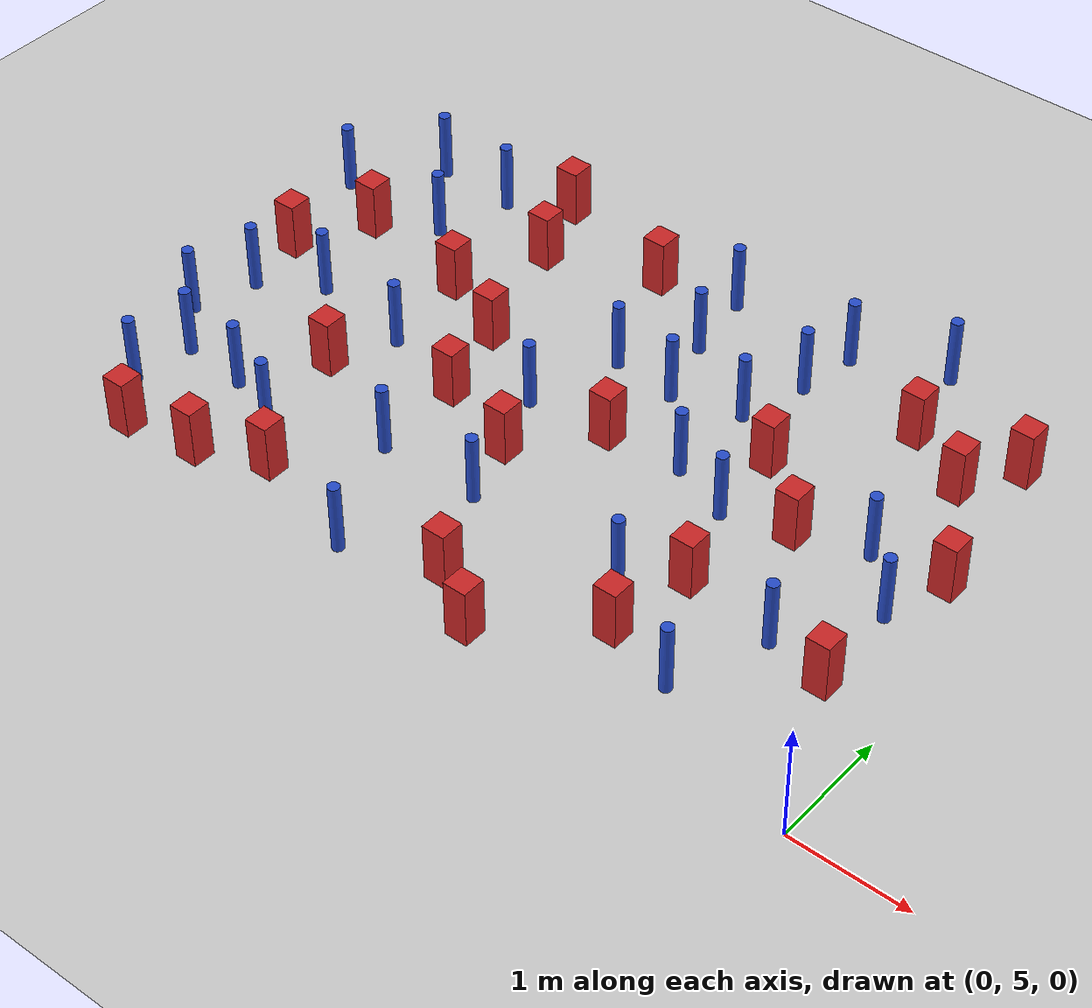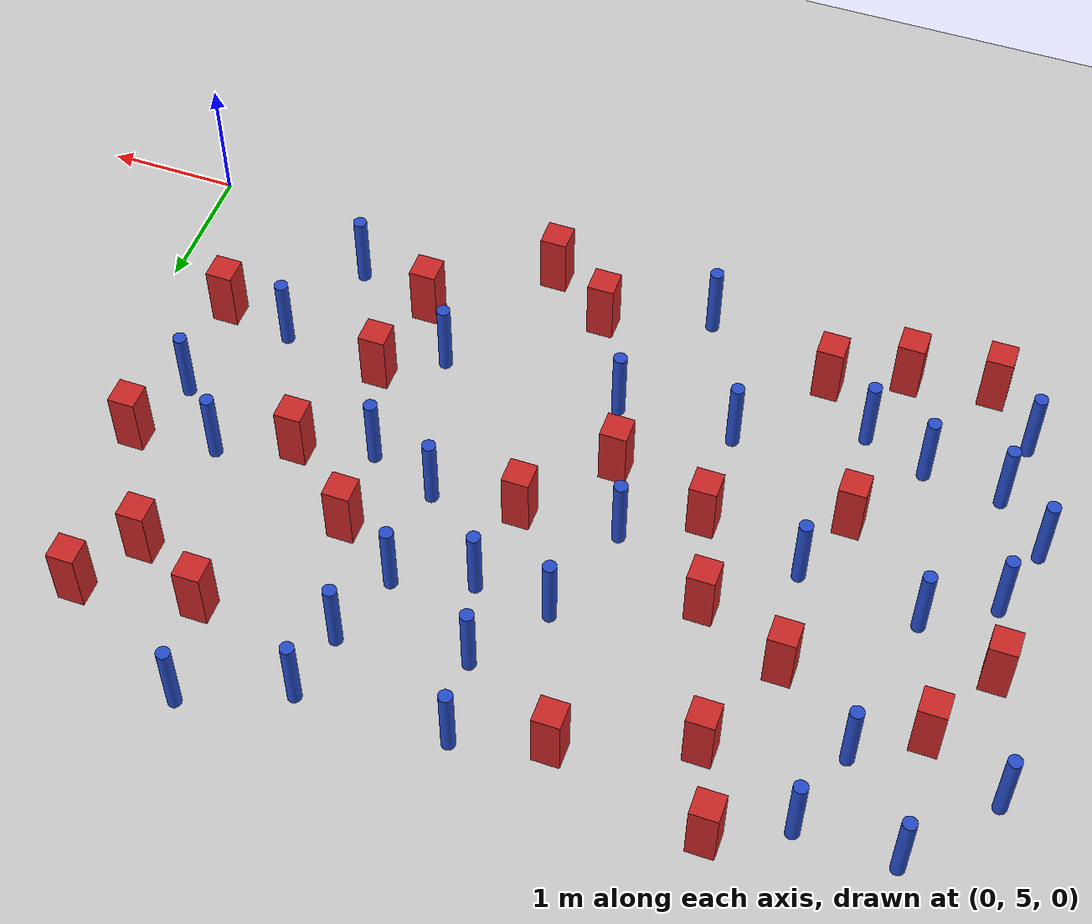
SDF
<sdf version="1.6">
 <world name="default">
  <model name="ground_plane">
   <static>1</static>
   <link name="link">
    <collision name="collision">
     <geometry><plane><normal>0 0 1</normal><size>100 100</size></plane></geometry>
     <surface><friction><ode><mu>100</mu><mu2>50</mu2></ode></friction></surface>
    </collision>
    <visual name="visual">
     <cast_shadows>0</cast_shadows>
     <geometry><plane><normal>0 0 1</normal><size>100 100</size></plane></geometry>
     <material>
      <ambient>1.0 1.0 1.0 1.0</ambient>
      <diffuse>0.8 0.8 0.8 1.0</diffuse>
      <specular>0.01 0.01 0.01 1.000000</specular>
     </material>
    </visual>
   </link>
  </model>
  <model name="square_post_obstacle1">
   <static>true</static>
   <pose>-6.20894556401 5.08491788929 1.91545236811e-07 -7.35059704564e-06 1.12565212e-07 2.39332434364e-05</pose>
   <link name="link">
    <pose>0 0 0.25 0 -0 0</pose>
    <inertial>
     <mass>100</mass>
     <inertia>
      <ixx>0.166667</ixx>
      <ixy>0</ixy>
      <ixz>0</ixz>
      <iyy>0.166667</iyy>
      <iyz>0</iyz>
      <izz>0.166667</izz>
     </inertia>
    </inertial>
    <collision name="collision"><geometry><box><size>.2 .2 .5</size></box></geometry></collision>
    <visual name="visual">
     <geometry><box><size>.2 .2 .5</size></box></geometry>
     <material>
      <script><name>Gazebo/Red</name><uri>file://media/materials/scripts/gazebo.material</uri></script>
     </material>
    </visual>
   </link>
  </model>
  <model name="pole_obstacle3">
   <static>true</static>
   <pose>-6.47764836646 9.04078290669 7.38925637345e-09 -8.471706928e-08 1.24976765081e-08 -1.74513093015e-07</pose>
   <link name="link">
    <pose>0 0 0.3 0 -0 0</pose>
    <inertial>
     <mass>1</mass>
     <inertia><ixx>0.145833</ixx><ixy>0</ixy><ixz>0</ixz><iyy>0.145833</iyy><iyz>0</iyz><izz>0.125</izz></inertia>
    </inertial>
    <collision name="collision">
     <geometry><cylinder><radius>0.05</radius><length>.6</length></cylinder></geometry>
    </collision>
    <visual name="visual">
     <geometry><cylinder><radius>0.05</radius><length>.6</length></cylinder></geometry>
     <material>
      <script><name>Gazebo/Blue</name><uri>file://media/materials/scripts/gazebo.material</uri></script>
     </material>
    </visual>
   </link>
  </model>
  <model name="square_post_obstacle3">
   <static>true</static>
   <pose>-0.432793943756 7.54914708848 1.91545236811e-07 -7.35059704564e-06 1.12565212e-07 2.39332434364e-05</pose>
   <link name="link">
    <pose>0 0 0.25 0 -0 0</pose>
    <inertial>
     <mass>100</mass>
     <inertia>
      <ixx>0.166667</ixx>
      <ixy>0</ixy>
      <ixz>0</ixz>
      <iyy>0.166667</iyy>
      <iyz>0</iyz>
      <izz>0.166667</izz>
     </inertia>
    </inertial>
    <collision name="collision"><geometry><box><size>.2 .2 .5</size></box></geometry></collision>
    <visual name="visual">
     <geometry><box><size>.2 .2 .5</size></box></geometry>
     <material>
      <script><name>Gazebo/Red</name><uri>file://media/materials/scripts/gazebo.material</uri></script>
     </material>
    </visual>
   </link>
  </model>
  <model name="pole_obstacle8">
   <static>true</static>
   <pose>-5.89937046172 5.9574986893 7.38925637345e-09 -8.47170692796e-08 1.24976764786e-08 -1.74513093032e-07</pose>
   <link name="link">
    <pose>0 0 0.3 0 -0 0</pose>
    <inertial>
     <mass>1</mass>
     <inertia><ixx>0.145833</ixx><ixy>0</ixy><ixz>0</ixz><iyy>0.145833</iyy><iyz>0</iyz><izz>0.125</izz></inertia>
    </inertial>
    <collision name="collision">
     <geometry><cylinder><radius>0.05</radius><length>.6</length></cylinder></geometry>
    </collision>
    <visual name="visual">
     <geometry><cylinder><radius>0.05</radius><length>.6</length></cylinder></geometry>
     <material>
      <script><name>Gazebo/Blue</name><uri>file://media/materials/scripts/gazebo.material</uri></script>
     </material>
    </visual>
   </link>
  </model>
  <model name="pole_obstacle11">
   <static>true</static>
   <pose>-4.01556916504 7.21280507882 7.38925637345e-09 -8.47170692795e-08 1.24976764731e-08 -1.74513093035e-07</pose>
   <link name="link">
    <pose>0 0 0.3 0 -0 0</pose>
    <inertial>
     <mass>1</mass>
     <inertia><ixx>0.145833</ixx><ixy>0</ixy><ixz>0</ixz><iyy>0.145833</iyy><iyz>0</iyz><izz>0.125</izz></inertia>
    </inertial>
    <collision name="collision">
     <geometry><cylinder><radius>0.05</radius><length>.6</length></cylinder></geometry>
    </collision>
    <visual name="visual">
     <geometry><cylinder><radius>0.05</radius><length>.6</length></cylinder></geometry>
     <material>
      <script><name>Gazebo/Blue</name><uri>file://media/materials/scripts/gazebo.material</uri></script>
     </material>
    </visual>
   </link>
  </model>
  <model name="pole_obstacle20">
   <static>true</static>
   <pose>-1.66863566471 9.47693834386 7.38925637345e-09 -8.47170692798e-08 1.24976764881e-08 -1.74513093027e-07</pose>
   <link name="link">
    <pose>0 0 0.3 0 -0 0</pose>
    <inertial>
     <mass>1</mass>
     <inertia><ixx>0.145833</ixx><ixy>0</ixy><ixz>0</ixz><iyy>0.145833</iyy><iyz>0</iyz><izz>0.125</izz></inertia>
    </inertial>
    <collision name="collision">
     <geometry><cylinder><radius>0.05</radius><length>.6</length></cylinder></geometry>
    </collision>
    <visual name="visual">
     <geometry><cylinder><radius>0.05</radius><length>.6</length></cylinder></geometry>
     <material>
      <script><name>Gazebo/Blue</name><uri>file://media/materials/scripts/gazebo.material</uri></script>
     </material>
    </visual>
   </link>
  </model>
  <model name="pole_obstacle33">
   <static>true</static>
   <pose>-4.06539118852 5.11988730379 7.38925637345e-09 -8.47170692796e-08 1.24976764786e-08 -1.74513093032e-07</pose>
   <link name="link">
    <pose>0 0 0.3 0 -0 0</pose>
    <inertial>
     <mass>1</mass>
     <inertia><ixx>0.145833</ixx><ixy>0</ixy><ixz>0</ixz><iyy>0.145833</iyy><iyz>0</iyz><izz>0.125</izz></inertia>
    </inertial>
    <collision name="collision">
     <geometry><cylinder><radius>0.05</radius><length>.6</length></cylinder></geometry>
    </collision>
    <visual name="visual">
     <geometry><cylinder><radius>0.05</radius><length>.6</length></cylinder></geometry>
     <material>
      <script><name>Gazebo/Blue</name><uri>file://media/materials/scripts/gazebo.material</uri></script>
     </material>
    </visual>
   </link>
  </model>
  <model name="pole_obstacle43">
   <static>true</static>
   <pose>-5.29233222057 7.10590205062 7.38925637345e-09 -8.47170692796e-08 1.24976764786e-08 -1.74513093032e-07</pose>
   <link name="link">
    <pose>0 0 0.3 0 -0 0</pose>
    <inertial>
     <mass>1</mass>
     <inertia><ixx>0.145833</ixx><ixy>0</ixy><ixz>0</ixz><iyy>0.145833</iyy><iyz>0</iyz><izz>0.125</izz></inertia>
    </inertial>
    <collision name="collision">
     <geometry><cylinder><radius>0.05</radius><length>.6</length></cylinder></geometry>
    </collision>
    <visual name="visual">
     <geometry><cylinder><radius>0.05</radius><length>.6</length></cylinder></geometry>
     <material>
      <script><name>Gazebo/Blue</name><uri>file://media/materials/scripts/gazebo.material</uri></script>
     </material>
    </visual>
   </link>
  </model>
  <model name="pole_obstacle48">
   <static>true</static>
   <pose>-6.82553633014 6.38991426187 7.38925637345e-09 -8.47170692796e-08 1.24976764786e-08 -1.74513093032e-07</pose>
   <link name="link">
    <pose>0 0 0.3 0 -0 0</pose>
    <inertial>
     <mass>1</mass>
     <inertia><ixx>0.145833</ixx><ixy>0</ixy><ixz>0</ixz><iyy>0.145833</iyy><iyz>0</iyz><izz>0.125</izz></inertia>
    </inertial>
    <collision name="collision">
     <geometry><cylinder><radius>0.05</radius><length>.6</length></cylinder></geometry>
    </collision>
    <visual name="visual">
     <geometry><cylinder><radius>0.05</radius><length>.6</length></cylinder></geometry>
     <material>
      <script><name>Gazebo/Blue</name><uri>file://media/materials/scripts/gazebo.material</uri></script>
     </material>
    </visual>
   </link>
  </model>
  <model name="square_post_obstacle38">
   <static>true</static>
   <pose>-1.50850280837 8.7493687069 1.91545236811e-07 -7.35059704564e-06 1.12565212e-07 2.39332434364e-05</pose>
   <link name="link">
    <pose>0 0 0.25 0 -0 0</pose>
    <inertial>
     <mass>100</mass>
     <inertia>
      <ixx>0.166667</ixx>
      <ixy>0</ixy>
      <ixz>0</ixz>
      <iyy>0.166667</iyy>
      <iyz>0</iyz>
      <izz>0.166667</izz>
     </inertia>
    </inertial>
    <collision name="collision"><geometry><box><size>.2 .2 .5</size></box></geometry></collision>
    <visual name="visual">
     <geometry><box><size>.2 .2 .5</size></box></geometry>
     <material>
      <script><name>Gazebo/Red</name><uri>file://media/materials/scripts/gazebo.material</uri></script>
     </material>
    </visual>
   </link>
  </model>
  <model name="pole_obstacle51">
   <static>true</static>
   <pose>-2.48467582547 8.66880732625 7.38925637345e-09 -8.47170692793e-08 1.24976764408e-08 -1.74513093041e-07</pose>
   <link name="link">
    <pose>0 0 0.3 0 -0 0</pose>
    <inertial>
     <mass>1</mass>
     <inertia><ixx>0.145833</ixx><ixy>0</ixy><ixz>0</ixz><iyy>0.145833</iyy><iyz>0</iyz><izz>0.125</izz></inertia>
    </inertial>
    <collision name="collision">
     <geometry><cylinder><radius>0.05</radius><length>.6</length></cylinder></geometry>
    </collision>
    <visual name="visual">
     <geometry><cylinder><radius>0.05</radius><length>.6</length></cylinder></geometry>
     <material>
      <script><name>Gazebo/Blue</name><uri>file://media/materials/scripts/gazebo.material</uri></script>
     </material>
    </visual>
   </link>
  </model>
  <model name="square_post_obstacle40">
   <static>true</static>
   <pose>-6.7552293985 7.4811414741 1.91545236811e-07 -7.35059704564e-06 1.12565212e-07 2.39332434364e-05</pose>
   <link name="link">
    <pose>0 0 0.25 0 -0 0</pose>
    <inertial>
     <mass>100</mass>
     <inertia>
      <ixx>0.166667</ixx>
      <ixy>0</ixy>
      <ixz>0</ixz>
      <iyy>0.166667</iyy>
      <iyz>0</iyz>
      <izz>0.166667</izz>
     </inertia>
    </inertial>
    <collision name="collision"><geometry><box><size>.2 .2 .5</size></box></geometry></collision>
    <visual name="visual">
     <geometry><box><size>.2 .2 .5</size></box></geometry>
     <material>
      <script><name>Gazebo/Red</name><uri>file://media/materials/scripts/gazebo.material</uri></script>
     </material>
    </visual>
   </link>
  </model>
  <model name="square_post_obstacle47">
   <static>true</static>
   <pose>-4.14041567313 8.99041949778 1.91545236811e-07 -7.35059704564e-06 1.12565212e-07 2.39332434364e-05</pose>
   <link name="link">
    <pose>0 0 0.25 0 -0 0</pose>
    <inertial>
     <mass>100</mass>
     <inertia>
      <ixx>0.166667</ixx>
      <ixy>0</ixy>
      <ixz>0</ixz>
      <iyy>0.166667</iyy>
      <iyz>0</iyz>
      <izz>0.166667</izz>
     </inertia>
    </inertial>
    <collision name="collision"><geometry><box><size>.2 .2 .5</size></box></geometry></collision>
    <visual name="visual">
     <geometry><box><size>.2 .2 .5</size></box></geometry>
     <material>
      <script><name>Gazebo/Red</name><uri>file://media/materials/scripts/gazebo.material</uri></script>
     </material>
    </visual>
   </link>
  </model>
  <model name="square_post_obstacle54">
   <static>true</static>
   <pose>-1.59396003654 7.2768290439 1.91545236811e-07 -7.35059704564e-06 1.12565212e-07 2.39332434364e-05</pose>
   <link name="link">
    <pose>0 0 0.25 0 -0 0</pose>
    <inertial>
     <mass>100</mass>
     <inertia>
      <ixx>0.166667</ixx>
      <ixy>0</ixy>
      <ixz>0</ixz>
      <iyy>0.166667</iyy>
      <iyz>0</iyz>
      <izz>0.166667</izz>
     </inertia>
    </inertial>
    <collision name="collision"><geometry><box><size>.2 .2 .5</size></box></geometry></collision>
    <visual name="visual">
     <geometry><box><size>.2 .2 .5</size></box></geometry>
     <material>
      <script><name>Gazebo/Red</name><uri>file://media/materials/scripts/gazebo.material</uri></script>
     </material>
    </visual>
   </link>
  </model>
  <model name="square_post_obstacle58">
   <static>true</static>
   <pose>-0.650520654761 8.89633776445 1.91545236811e-07 -7.35059704564e-06 1.12565212e-07 2.39332434364e-05</pose>
   <link name="link">
    <pose>0 0 0.25 0 -0 0</pose>
    <inertial>
     <mass>100</mass>
     <inertia>
      <ixx>0.166667</ixx>
      <ixy>0</ixy>
      <ixz>0</ixz>
      <iyy>0.166667</iyy>
      <iyz>0</iyz>
      <izz>0.166667</izz>
     </inertia>
    </inertial>
    <collision name="collision"><geometry><box><size>.2 .2 .5</size></box></geometry></collision>
    <visual name="visual">
     <geometry><box><size>.2 .2 .5</size></box></geometry>
     <material>
      <script><name>Gazebo/Red</name><uri>file://media/materials/scripts/gazebo.material</uri></script>
     </material>
    </visual>
   </link>
  </model>
  <model name="square_post_obstacle62">
   <static>true</static>
   <pose>-5.06241855081 8.66214769846 1.91545236811e-07 -7.35059704564e-06 1.12565212e-07 2.39332434364e-05</pose>
   <link name="link">
    <pose>0 0 0.25 0 -0 0</pose>
    <inertial>
     <mass>100</mass>
     <inertia>
      <ixx>0.166667</ixx>
      <ixy>0</ixy>
      <ixz>0</ixz>
      <iyy>0.166667</iyy>
      <iyz>0</iyz>
      <izz>0.166667</izz>
     </inertia>
    </inertial>
    <collision name="collision"><geometry><box><size>.2 .2 .5</size></box></geometry></collision>
    <visual name="visual">
     <geometry><box><size>.2 .2 .5</size></box></geometry>
     <material>
      <script><name>Gazebo/Red</name><uri>file://media/materials/scripts/gazebo.material</uri></script>
     </material>
    </visual>
   </link>
  </model>
  <model name="pole_obstacle73">
   <static>true</static>
   <pose>-4.52147539146 6.12141185137 7.38925637345e-09 -8.47170692796e-08 1.24976764786e-08 -1.74513093032e-07</pose>
   <link name="link">
    <pose>0 0 0.3 0 -0 0</pose>
    <inertial>
     <mass>1</mass>
     <inertia><ixx>0.145833</ixx><ixy>0</ixy><ixz>0</ixz><iyy>0.145833</iyy><iyz>0</iyz><izz>0.125</izz></inertia>
    </inertial>
    <collision name="collision">
     <geometry><cylinder><radius>0.05</radius><length>.6</length></cylinder></geometry>
    </collision>
    <visual name="visual">
     <geometry><cylinder><radius>0.05</radius><length>.6</length></cylinder></geometry>
     <material>
      <script><name>Gazebo/Blue</name><uri>file://media/materials/scripts/gazebo.material</uri></script>
     </material>
    </visual>
   </link>
  </model>
  <model name="square_post_obstacle66">
   <static>true</static>
   <pose>-5.38205923849 7.89868391297 1.91545236811e-07 -7.35059704564e-06 1.12565212e-07 2.39332434364e-05</pose>
   <link name="link">
    <pose>0 0 0.25 0 -0 0</pose>
    <inertial>
     <mass>100</mass>
     <inertia>
      <ixx>0.166667</ixx>
      <ixy>0</ixy>
      <ixz>0</ixz>
      <iyy>0.166667</iyy>
      <iyz>0</iyz>
      <izz>0.166667</izz>
     </inertia>
    </inertial>
    <collision name="collision"><geometry><box><size>.2 .2 .5</size></box></geometry></collision>
    <visual name="visual">
     <geometry><box><size>.2 .2 .5</size></box></geometry>
     <material>
      <script><name>Gazebo/Red</name><uri>file://media/materials/scripts/gazebo.material</uri></script>
     </material>
    </visual>
   </link>
  </model>
  <model name="square_post_obstacle72">
   <static>true</static>
   <pose>-2.18340389201 7.79481858662 1.91545236811e-07 -7.35059704564e-06 1.12565212e-07 2.39332434364e-05</pose>
   <link name="link">
    <pose>0 0 0.25 0 -0 0</pose>
    <inertial>
     <mass>100</mass>
     <inertia>
      <ixx>0.166667</ixx>
      <ixy>0</ixy>
      <ixz>0</ixz>
      <iyy>0.166667</iyy>
      <iyz>0</iyz>
      <izz>0.166667</izz>
     </inertia>
    </inertial>
    <collision name="collision"><geometry><box><size>.2 .2 .5</size></box></geometry></collision>
    <visual name="visual">
     <geometry><box><size>.2 .2 .5</size></box></geometry>
     <material>
      <script><name>Gazebo/Red</name><uri>file://media/materials/scripts/gazebo.material</uri></script>
     </material>
    </visual>
   </link>
  </model>
  <model name="pole_obstacle86">
   <static>true</static>
   <pose>-0.611810210772 7.02652283224 7.38925637345e-09 -8.471706928e-08 1.24976765086e-08 -1.74513093015e-07</pose>
   <link name="link">
    <pose>0 0 0.3 0 -0 0</pose>
    <inertial>
     <mass>1</mass>
     <inertia><ixx>0.145833</ixx><ixy>0</ixy><ixz>0</ixz><iyy>0.145833</iyy><iyz>0</iyz><izz>0.125</izz></inertia>
    </inertial>
    <collision name="collision">
     <geometry><cylinder><radius>0.05</radius><length>.6</length></cylinder></geometry>
    </collision>
    <visual name="visual">
     <geometry><cylinder><radius>0.05</radius><length>.6</length></cylinder></geometry>
     <material>
      <script><name>Gazebo/Blue</name><uri>file://media/materials/scripts/gazebo.material</uri></script>
     </material>
    </visual>
   </link>
  </model>
  <model name="square_post_obstacle86">
   <static>true</static>
   <pose>-3.30049789746 7.26936227035 1.91545236811e-07 -7.35059704564e-06 1.12565212e-07 2.39332434364e-05</pose>
   <link name="link">
    <pose>0 0 0.25 0 -0 0</pose>
    <inertial>
     <mass>100</mass>
     <inertia>
      <ixx>0.166667</ixx>
      <ixy>0</ixy>
      <ixz>0</ixz>
      <iyy>0.166667</iyy>
      <iyz>0</iyz>
      <izz>0.166667</izz>
     </inertia>
    </inertial>
    <collision name="collision"><geometry><box><size>.2 .2 .5</size></box></geometry></collision>
    <visual name="visual">
     <geometry><box><size>.2 .2 .5</size></box></geometry>
     <material>
      <script><name>Gazebo/Red</name><uri>file://media/materials/scripts/gazebo.material</uri></script>
     </material>
    </visual>
   </link>
  </model>
  <model name="pole_obstacle95">
   <static>true</static>
   <pose>-3.78122057764 7.99986493769 7.38925637345e-09 -8.471706928e-08 1.24976765193e-08 -1.74513093011e-07</pose>
   <link name="link">
    <pose>0 0 0.3 0 -0 0</pose>
    <inertial>
     <mass>1</mass>
     <inertia><ixx>0.145833</ixx><ixy>0</ixy><ixz>0</ixz><iyy>0.145833</iyy><iyz>0</iyz><izz>0.125</izz></inertia>
    </inertial>
    <collision name="collision">
     <geometry><cylinder><radius>0.05</radius><length>.6</length></cylinder></geometry>
    </collision>
    <visual name="visual">
     <geometry><cylinder><radius>0.05</radius><length>.6</length></cylinder></geometry>
     <material>
      <script><name>Gazebo/Blue</name><uri>file://media/materials/scripts/gazebo.material</uri></script>
     </material>
    </visual>
   </link>
  </model>
  <model name="square_post_obstacle91">
   <static>true</static>
   <pose>-5.58121292517 5.17262892646 1.91545236811e-07 -7.35059704564e-06 1.12565212e-07 2.39332434364e-05</pose>
   <link name="link">
    <pose>0 0 0.25 0 -0 0</pose>
    <inertial>
     <mass>100</mass>
     <inertia>
      <ixx>0.166667</ixx>
      <ixy>0</ixy>
      <ixz>0</ixz>
      <iyy>0.166667</iyy>
      <iyz>0</iyz>
      <izz>0.166667</izz>
     </inertia>
    </inertial>
    <collision name="collision"><geometry><box><size>.2 .2 .5</size></box></geometry></collision>
    <visual name="visual">
     <geometry><box><size>.2 .2 .5</size></box></geometry>
     <material>
      <script><name>Gazebo/Red</name><uri>file://media/materials/scripts/gazebo.material</uri></script>
     </material>
    </visual>
   </link>
  </model>
  <model name="pole_obstacle100">
   <static>true</static>
   <pose>-2.65486168831 7.32882470483 7.38925637345e-09 -8.47170692798e-08 1.24976765033e-08 -1.74513093019e-07</pose>
   <link name="link">
    <pose>0 0 0.3 0 -0 0</pose>
    <inertial>
     <mass>1</mass>
     <inertia><ixx>0.145833</ixx><ixy>0</ixy><ixz>0</ixz><iyy>0.145833</iyy><iyz>0</iyz><izz>0.125</izz></inertia>
    </inertial>
    <collision name="collision">
     <geometry><cylinder><radius>0.05</radius><length>.6</length></cylinder></geometry>
    </collision>
    <visual name="visual">
     <geometry><cylinder><radius>0.05</radius><length>.6</length></cylinder></geometry>
     <material>
      <script><name>Gazebo/Blue</name><uri>file://media/materials/scripts/gazebo.material</uri></script>
     </material>
    </visual>
   </link>
  </model>
  <model name="pole_obstacle107">
   <static>true</static>
   <pose>-2.29865022578 6.14065715365 7.38925637345e-09 -8.47170692798e-08 1.24976765033e-08 -1.74513093019e-07</pose>
   <link name="link">
    <pose>0 0 0.3 0 -0 0</pose>
    <inertial>
     <mass>1</mass>
     <inertia><ixx>0.145833</ixx><ixy>0</ixy><ixz>0</ixz><iyy>0.145833</iyy><iyz>0</iyz><izz>0.125</izz></inertia>
    </inertial>
    <collision name="collision">
     <geometry><cylinder><radius>0.05</radius><length>.6</length></cylinder></geometry>
    </collision>
    <visual name="visual">
     <geometry><cylinder><radius>0.05</radius><length>.6</length></cylinder></geometry>
     <material>
      <script><name>Gazebo/Blue</name><uri>file://media/materials/scripts/gazebo.material</uri></script>
     </material>
    </visual>
   </link>
  </model>
  <model name="square_post_obstacle106">
   <static>true</static>
   <pose>-2.79856461067 5.06059939009 1.91545236811e-07 -7.35059704564e-06 1.12565212e-07 2.39332434364e-05</pose>
   <link name="link">
    <pose>0 0 0.25 0 -0 0</pose>
    <inertial>
     <mass>100</mass>
     <inertia>
      <ixx>0.166667</ixx>
      <ixy>0</ixy>
      <ixz>0</ixz>
      <iyy>0.166667</iyy>
      <iyz>0</iyz>
      <izz>0.166667</izz>
     </inertia>
    </inertial>
    <collision name="collision"><geometry><box><size>.2 .2 .5</size></box></geometry></collision>
    <visual name="visual">
     <geometry><box><size>.2 .2 .5</size></box></geometry>
     <material>
      <script><name>Gazebo/Red</name><uri>file://media/materials/scripts/gazebo.material</uri></script>
     </material>
    </visual>
   </link>
  </model>
  <model name="pole_obstacle112">
   <static>true</static>
   <pose>-6.47332131638 6.01118612711 7.38925637345e-09 -8.47170692796e-08 1.24976764786e-08 -1.74513093032e-07</pose>
   <link name="link">
    <pose>0 0 0.3 0 -0 0</pose>
    <inertial>
     <mass>1</mass>
     <inertia><ixx>0.145833</ixx><ixy>0</ixy><ixz>0</ixz><iyy>0.145833</iyy><iyz>0</iyz><izz>0.125</izz></inertia>
    </inertial>
    <collision name="collision">
     <geometry><cylinder><radius>0.05</radius><length>.6</length></cylinder></geometry>
    </collision>
    <visual name="visual">
     <geometry><cylinder><radius>0.05</radius><length>.6</length></cylinder></geometry>
     <material>
      <script><name>Gazebo/Blue</name><uri>file://media/materials/scripts/gazebo.material</uri></script>
     </material>
    </visual>
   </link>
  </model>
  <model name="pole_obstacle115">
   <static>true</static>
   <pose>-5.78686398361 9.02503411449 7.38925637345e-09 -8.471706928e-08 1.24976765081e-08 -1.74513093015e-07</pose>
   <link name="link">
    <pose>0 0 0.3 0 -0 0</pose>
    <inertial>
     <mass>1</mass>
     <inertia><ixx>0.145833</ixx><ixy>0</ixy><ixz>0</ixz><iyy>0.145833</iyy><iyz>0</iyz><izz>0.125</izz></inertia>
    </inertial>
    <collision name="collision">
     <geometry><cylinder><radius>0.05</radius><length>.6</length></cylinder></geometry>
    </collision>
    <visual name="visual">
     <geometry><cylinder><radius>0.05</radius><length>.6</length></cylinder></geometry>
     <material>
      <script><name>Gazebo/Blue</name><uri>file://media/materials/scripts/gazebo.material</uri></script>
     </material>
    </visual>
   </link>
  </model>
  <model name="square_post_obstacle112">
   <static>true</static>
   <pose>-1.99038155106 5.70092643401 1.91545236811e-07 -7.35059704564e-06 1.12565212e-07 2.39332434364e-05</pose>
   <link name="link">
    <pose>0 0 0.25 0 -0 0</pose>
    <inertial>
     <mass>100</mass>
     <inertia>
      <ixx>0.166667</ixx>
      <ixy>0</ixy>
      <ixz>0</ixz>
      <iyy>0.166667</iyy>
      <iyz>0</iyz>
      <izz>0.166667</izz>
     </inertia>
    </inertial>
    <collision name="collision"><geometry><box><size>.2 .2 .5</size></box></geometry></collision>
    <visual name="visual">
     <geometry><box><size>.2 .2 .5</size></box></geometry>
     <material>
      <script><name>Gazebo/Red</name><uri>file://media/materials/scripts/gazebo.material</uri></script>
     </material>
    </visual>
   </link>
  </model>
  <model name="square_post_obstacle113">
   <static>true</static>
   <pose>-0.573171763078 6.22128911317 1.91545236811e-07 -7.35059704564e-06 1.12565212e-07 2.39332434364e-05</pose>
   <link name="link">
    <pose>0 0 0.25 0 -0 0</pose>
    <inertial>
     <mass>100</mass>
     <inertia>
      <ixx>0.166667</ixx>
      <ixy>0</ixy>
      <ixz>0</ixz>
      <iyy>0.166667</iyy>
      <iyz>0</iyz>
      <izz>0.166667</izz>
     </inertia>
    </inertial>
    <collision name="collision"><geometry><box><size>.2 .2 .5</size></box></geometry></collision>
    <visual name="visual">
     <geometry><box><size>.2 .2 .5</size></box></geometry>
     <material>
      <script><name>Gazebo/Red</name><uri>file://media/materials/scripts/gazebo.material</uri></script>
     </material>
    </visual>
   </link>
  </model>
  <model name="pole_obstacle122">
   <static>true</static>
   <pose>-3.22174271805 7.94805608816 7.38925637345e-09 -8.47170692798e-08 1.24976765033e-08 -1.74513093019e-07</pose>
   <link name="link">
    <pose>0 0 0.3 0 -0 0</pose>
    <inertial>
     <mass>1</mass>
     <inertia><ixx>0.145833</ixx><ixy>0</ixy><ixz>0</ixz><iyy>0.145833</iyy><iyz>0</iyz><izz>0.125</izz></inertia>
    </inertial>
    <collision name="collision">
     <geometry><cylinder><radius>0.05</radius><length>.6</length></cylinder></geometry>
    </collision>
    <visual name="visual">
     <geometry><cylinder><radius>0.05</radius><length>.6</length></cylinder></geometry>
     <material>
      <script><name>Gazebo/Blue</name><uri>file://media/materials/scripts/gazebo.material</uri></script>
     </material>
    </visual>
   </link>
  </model>
  <model name="square_post_obstacle123">
   <static>true</static>
   <pose>-5.03913984219 5.40950445573 1.91545236811e-07 -7.35059704564e-06 1.12565212e-07 2.39332434364e-05</pose>
   <link name="link">
    <pose>0 0 0.25 0 -0 0</pose>
    <inertial>
     <mass>100</mass>
     <inertia>
      <ixx>0.166667</ixx>
      <ixy>0</ixy>
      <ixz>0</ixz>
      <iyy>0.166667</iyy>
      <iyz>0</iyz>
      <izz>0.166667</izz>
     </inertia>
    </inertial>
    <collision name="collision"><geometry><box><size>.2 .2 .5</size></box></geometry></collision>
    <visual name="visual">
     <geometry><box><size>.2 .2 .5</size></box></geometry>
     <material>
      <script><name>Gazebo/Red</name><uri>file://media/materials/scripts/gazebo.material</uri></script>
     </material>
    </visual>
   </link>
  </model>
  <model name="square_post_obstacle129">
   <static>true</static>
   <pose>-1.87731808479 6.41770010816 1.91545236811e-07 -7.35059704564e-06 1.12565212e-07 2.39332434364e-05</pose>
   <link name="link">
    <pose>0 0 0.25 0 -0 0</pose>
    <inertial>
     <mass>100</mass>
     <inertia>
      <ixx>0.166667</ixx>
      <ixy>0</ixy>
      <ixz>0</ixz>
      <iyy>0.166667</iyy>
      <iyz>0</iyz>
      <izz>0.166667</izz>
     </inertia>
    </inertial>
    <collision name="collision"><geometry><box><size>.2 .2 .5</size></box></geometry></collision>
    <visual name="visual">
     <geometry><box><size>.2 .2 .5</size></box></geometry>
     <material>
      <script><name>Gazebo/Red</name><uri>file://media/materials/scripts/gazebo.material</uri></script>
     </material>
    </visual>
   </link>
  </model>
  <model name="pole_obstacle138">
   <static>true</static>
   <pose>-2.40298603883 9.17294578273 7.38925637345e-09 -8.47170692793e-08 1.24976764408e-08 -1.74513093041e-07</pose>
   <link name="link">
    <pose>0 0 0.3 0 -0 0</pose>
    <inertial>
     <mass>1</mass>
     <inertia><ixx>0.145833</ixx><ixy>0</ixy><ixz>0</ixz><iyy>0.145833</iyy><iyz>0</iyz><izz>0.125</izz></inertia>
    </inertial>
    <collision name="collision">
     <geometry><cylinder><radius>0.05</radius><length>.6</length></cylinder></geometry>
    </collision>
    <visual name="visual">
     <geometry><cylinder><radius>0.05</radius><length>.6</length></cylinder></geometry>
     <material>
      <script><name>Gazebo/Blue</name><uri>file://media/materials/scripts/gazebo.material</uri></script>
     </material>
    </visual>
   </link>
  </model>
  <model name="square_post_obstacle139">
   <static>true</static>
   <pose>-0.934914515662 8.42577003512 1.91545236811e-07 -7.35059704564e-06 1.12565212e-07 2.39332434364e-05</pose>
   <link name="link">
    <pose>0 0 0.25 0 -0 0</pose>
    <inertial>
     <mass>100</mass>
     <inertia>
      <ixx>0.166667</ixx>
      <ixy>0</ixy>
      <ixz>0</ixz>
      <iyy>0.166667</iyy>
      <iyz>0</iyz>
      <izz>0.166667</izz>
     </inertia>
    </inertial>
    <collision name="collision"><geometry><box><size>.2 .2 .5</size></box></geometry></collision>
    <visual name="visual">
     <geometry><box><size>.2 .2 .5</size></box></geometry>
     <material>
      <script><name>Gazebo/Red</name><uri>file://media/materials/scripts/gazebo.material</uri></script>
     </material>
    </visual>
   </link>
  </model>
  <model name="square_post_obstacle141">
   <static>true</static>
   <pose>-3.80790569587 6.65970384939 1.91545236811e-07 -7.35059704564e-06 1.12565212e-07 2.39332434364e-05</pose>
   <link name="link">
    <pose>0 0 0.25 0 -0 0</pose>
    <inertial>
     <mass>100</mass>
     <inertia>
      <ixx>0.166667</ixx>
      <ixy>0</ixy>
      <ixz>0</ixz>
      <iyy>0.166667</iyy>
      <iyz>0</iyz>
      <izz>0.166667</izz>
     </inertia>
    </inertial>
    <collision name="collision"><geometry><box><size>.2 .2 .5</size></box></geometry></collision>
    <visual name="visual">
     <geometry><box><size>.2 .2 .5</size></box></geometry>
     <material>
      <script><name>Gazebo/Red</name><uri>file://media/materials/scripts/gazebo.material</uri></script>
     </material>
    </visual>
   </link>
  </model>
  <model name="pole_obstacle150">
   <static>true</static>
   <pose>-6.99057628273 8.40293337798 7.38925637345e-09 -8.471706928e-08 1.24976765081e-08 -1.74513093015e-07</pose>
   <link name="link">
    <pose>0 0 0.3 0 -0 0</pose>
    <inertial>
     <mass>1</mass>
     <inertia><ixx>0.145833</ixx><ixy>0</ixy><ixz>0</ixz><iyy>0.145833</iyy><iyz>0</iyz><izz>0.125</izz></inertia>
    </inertial>
    <collision name="collision">
     <geometry><cylinder><radius>0.05</radius><length>.6</length></cylinder></geometry>
    </collision>
    <visual name="visual">
     <geometry><cylinder><radius>0.05</radius><length>.6</length></cylinder></geometry>
     <material>
      <script><name>Gazebo/Blue</name><uri>file://media/materials/scripts/gazebo.material</uri></script>
     </material>
    </visual>
   </link>
  </model>
  <model name="pole_obstacle151">
   <static>true</static>
   <pose>-3.40278954824 8.54389842489 7.38925637345e-09 -8.47170692793e-08 1.24976764408e-08 -1.74513093041e-07</pose>
   <link name="link">
    <pose>0 0 0.3 0 -0 0</pose>
    <inertial>
     <mass>1</mass>
     <inertia><ixx>0.145833</ixx><ixy>0</ixy><ixz>0</ixz><iyy>0.145833</iyy><iyz>0</iyz><izz>0.125</izz></inertia>
    </inertial>
    <collision name="collision">
     <geometry><cylinder><radius>0.05</radius><length>.6</length></cylinder></geometry>
    </collision>
    <visual name="visual">
     <geometry><cylinder><radius>0.05</radius><length>.6</length></cylinder></geometry>
     <material>
      <script><name>Gazebo/Blue</name><uri>file://media/materials/scripts/gazebo.material</uri></script>
     </material>
    </visual>
   </link>
  </model>
  <model name="square_post_obstacle149">
   <static>true</static>
   <pose>-4.53985675156 6.90543369407 1.91545236811e-07 -7.35059704564e-06 1.12565212e-07 2.39332434364e-05</pose>
   <link name="link">
    <pose>0 0 0.25 0 -0 0</pose>
    <inertial>
     <mass>100</mass>
     <inertia>
      <ixx>0.166667</ixx>
      <ixy>0</ixy>
      <ixz>0</ixz>
      <iyy>0.166667</iyy>
      <iyz>0</iyz>
      <izz>0.166667</izz>
     </inertia>
    </inertial>
    <collision name="collision"><geometry><box><size>.2 .2 .5</size></box></geometry></collision>
    <visual name="visual">
     <geometry><box><size>.2 .2 .5</size></box></geometry>
     <material>
      <script><name>Gazebo/Red</name><uri>file://media/materials/scripts/gazebo.material</uri></script>
     </material>
    </visual>
   </link>
  </model>
  <model name="pole_obstacle161">
   <static>true</static>
   <pose>-5.43060582658 5.78286021294 7.38925637345e-09 -8.47170692796e-08 1.24976764786e-08 -1.74513093032e-07</pose>
   <link name="link">
    <pose>0 0 0.3 0 -0 0</pose>
    <inertial>
     <mass>1</mass>
     <inertia><ixx>0.145833</ixx><ixy>0</ixy><ixz>0</ixz><iyy>0.145833</iyy><iyz>0</iyz><izz>0.125</izz></inertia>
    </inertial>
    <collision name="collision">
     <geometry><cylinder><radius>0.05</radius><length>.6</length></cylinder></geometry>
    </collision>
    <visual name="visual">
     <geometry><cylinder><radius>0.05</radius><length>.6</length></cylinder></geometry>
     <material>
      <script><name>Gazebo/Blue</name><uri>file://media/materials/scripts/gazebo.material</uri></script>
     </material>
    </visual>
   </link>
  </model>
  <model name="square_post_obstacle161">
   <static>true</static>
   <pose>-5.2760360326 9.28049502806 1.91545236811e-07 -7.35059704564e-06 1.12565212e-07 2.39332434364e-05</pose>
   <link name="link">
    <pose>0 0 0.25 0 -0 0</pose>
    <inertial>
     <mass>100</mass>
     <inertia>
      <ixx>0.166667</ixx>
      <ixy>0</ixy>
      <ixz>0</ixz>
      <iyy>0.166667</iyy>
      <iyz>0</iyz>
      <izz>0.166667</izz>
     </inertia>
    </inertial>
    <collision name="collision"><geometry><box><size>.2 .2 .5</size></box></geometry></collision>
    <visual name="visual">
     <geometry><box><size>.2 .2 .5</size></box></geometry>
     <material>
      <script><name>Gazebo/Red</name><uri>file://media/materials/scripts/gazebo.material</uri></script>
     </material>
    </visual>
   </link>
  </model>
  <model name="square_post_obstacle162">
   <static>true</static>
   <pose>-5.5077103867 6.56934866774 1.91545236811e-07 -7.35059704564e-06 1.12565212e-07 2.39332434364e-05</pose>
   <link name="link">
    <pose>0 0 0.25 0 -0 0</pose>
    <inertial>
     <mass>100</mass>
     <inertia>
      <ixx>0.166667</ixx>
      <ixy>0</ixy>
      <ixz>0</ixz>
      <iyy>0.166667</iyy>
      <iyz>0</iyz>
      <izz>0.166667</izz>
     </inertia>
    </inertial>
    <collision name="collision"><geometry><box><size>.2 .2 .5</size></box></geometry></collision>
    <visual name="visual">
     <geometry><box><size>.2 .2 .5</size></box></geometry>
     <material>
      <script><name>Gazebo/Red</name><uri>file://media/materials/scripts/gazebo.material</uri></script>
     </material>
    </visual>
   </link>
  </model>
  <model name="pole_obstacle170">
   <static>true</static>
   <pose>-3.65096773998 6.13245183753 7.38925637345e-09 -8.47170692794e-08 1.24976764468e-08 -1.7451309304e-07</pose>
   <link name="link">
    <pose>0 0 0.3 0 -0 0</pose>
    <inertial>
     <mass>1</mass>
     <inertia><ixx>0.145833</ixx><ixy>0</ixy><ixz>0</ixz><iyy>0.145833</iyy><iyz>0</iyz><izz>0.125</izz></inertia>
    </inertial>
    <collision name="collision">
     <geometry><cylinder><radius>0.05</radius><length>.6</length></cylinder></geometry>
    </collision>
    <visual name="visual">
     <geometry><cylinder><radius>0.05</radius><length>.6</length></cylinder></geometry>
     <material>
      <script><name>Gazebo/Blue</name><uri>file://media/materials/scripts/gazebo.material</uri></script>
     </material>
    </visual>
   </link>
  </model>
  <model name="pole_obstacle177">
   <static>true</static>
   <pose>-2.65871727689 8.11239152562 7.38925637345e-09 -8.47170692793e-08 1.24976764408e-08 -1.74513093041e-07</pose>
   <link name="link">
    <pose>0 0 0.3 0 -0 0</pose>
    <inertial>
     <mass>1</mass>
     <inertia><ixx>0.145833</ixx><ixy>0</ixy><ixz>0</ixz><iyy>0.145833</iyy><iyz>0</iyz><izz>0.125</izz></inertia>
    </inertial>
    <collision name="collision">
     <geometry><cylinder><radius>0.05</radius><length>.6</length></cylinder></geometry>
    </collision>
    <visual name="visual">
     <geometry><cylinder><radius>0.05</radius><length>.6</length></cylinder></geometry>
     <material>
      <script><name>Gazebo/Blue</name><uri>file://media/materials/scripts/gazebo.material</uri></script>
     </material>
    </visual>
   </link>
  </model>
  <model name="square_post_obstacle185">
   <static>true</static>
   <pose>-6.43045054895 8.09145812866 1.91545236811e-07 -7.35059704564e-06 1.12565212e-07 2.39332434364e-05</pose>
   <link name="link">
    <pose>0 0 0.25 0 -0 0</pose>
    <inertial>
     <mass>100</mass>
     <inertia>
      <ixx>0.166667</ixx>
      <ixy>0</ixy>
      <ixz>0</ixz>
      <iyy>0.166667</iyy>
      <iyz>0</iyz>
      <izz>0.166667</izz>
     </inertia>
    </inertial>
    <collision name="collision"><geometry><box><size>.2 .2 .5</size></box></geometry></collision>
    <visual name="visual">
     <geometry><box><size>.2 .2 .5</size></box></geometry>
     <material>
      <script><name>Gazebo/Red</name><uri>file://media/materials/scripts/gazebo.material</uri></script>
     </material>
    </visual>
   </link>
  </model>
  <model name="square_post_obstacle198">
   <static>true</static>
   <pose>-3.28230618505 5.38587323668 1.91545236811e-07 -7.35059704564e-06 1.12565212e-07 2.39332434364e-05</pose>
   <link name="link">
    <pose>0 0 0.25 0 -0 0</pose>
    <inertial>
     <mass>100</mass>
     <inertia>
      <ixx>0.166667</ixx>
      <ixy>0</ixy>
      <ixz>0</ixz>
      <iyy>0.166667</iyy>
      <iyz>0</iyz>
      <izz>0.166667</izz>
     </inertia>
    </inertial>
    <collision name="collision"><geometry><box><size>.2 .2 .5</size></box></geometry></collision>
    <visual name="visual">
     <geometry><box><size>.2 .2 .5</size></box></geometry>
     <material>
      <script><name>Gazebo/Red</name><uri>file://media/materials/scripts/gazebo.material</uri></script>
     </material>
    </visual>
   </link>
  </model>
  <model name="square_post_obstacle202">
   <static>true</static>
   <pose>-4.74350429183 7.61023506558 1.91545236811e-07 -7.35059704564e-06 1.12565212e-07 2.39332434364e-05</pose>
   <link name="link">
    <pose>0 0 0.25 0 -0 0</pose>
    <inertial>
     <mass>100</mass>
     <inertia>
      <ixx>0.166667</ixx>
      <ixy>0</ixy>
      <ixz>0</ixz>
      <iyy>0.166667</iyy>
      <iyz>0</iyz>
      <izz>0.166667</izz>
     </inertia>
    </inertial>
    <collision name="collision"><geometry><box><size>.2 .2 .5</size></box></geometry></collision>
    <visual name="visual">
     <geometry><box><size>.2 .2 .5</size></box></geometry>
     <material>
      <script><name>Gazebo/Red</name><uri>file://media/materials/scripts/gazebo.material</uri></script>
     </material>
    </visual>
   </link>
  </model>
  <model name="pole_obstacle193">
   <static>true</static>
   <pose>-6.5553882075 5.49283595086 7.38925637345e-09 -8.47170692796e-08 1.24976764786e-08 -1.74513093032e-07</pose>
   <link name="link">
    <pose>0 0 0.3 0 -0 0</pose>
    <inertial>
     <mass>1</mass>
     <inertia><ixx>0.145833</ixx><ixy>0</ixy><ixz>0</ixz><iyy>0.145833</iyy><iyz>0</iyz><izz>0.125</izz></inertia>
    </inertial>
    <collision name="collision">
     <geometry><cylinder><radius>0.05</radius><length>.6</length></cylinder></geometry>
    </collision>
    <visual name="visual">
     <geometry><cylinder><radius>0.05</radius><length>.6</length></cylinder></geometry>
     <material>
      <script><name>Gazebo/Blue</name><uri>file://media/materials/scripts/gazebo.material</uri></script>
     </material>
    </visual>
   </link>
  </model>
  <model name="pole_obstacle203">
   <static>true</static>
   <pose>-1.03719979769 7.48000477808 7.38925637345e-09 -8.47170692799e-08 1.2497676505e-08 -1.74513093018e-07</pose>
   <link name="link">
    <pose>0 0 0.3 0 -0 0</pose>
    <inertial>
     <mass>1</mass>
     <inertia><ixx>0.145833</ixx><ixy>0</ixy><ixz>0</ixz><iyy>0.145833</iyy><iyz>0</iyz><izz>0.125</izz></inertia>
    </inertial>
    <collision name="collision">
     <geometry><cylinder><radius>0.05</radius><length>.6</length></cylinder></geometry>
    </collision>
    <visual name="visual">
     <geometry><cylinder><radius>0.05</radius><length>.6</length></cylinder></geometry>
     <material>
      <script><name>Gazebo/Blue</name><uri>file://media/materials/scripts/gazebo.material</uri></script>
     </material>
    </visual>
   </link>
  </model>
  <model name="pole_obstacle212">
   <static>true</static>
   <pose>-6.17117999043 7.22868002078 7.38925637345e-09 -8.47170692796e-08 1.24976764786e-08 -1.74513093032e-07</pose>
   <link name="link">
    <pose>0 0 0.3 0 -0 0</pose>
    <inertial>
     <mass>1</mass>
     <inertia><ixx>0.145833</ixx><ixy>0</ixy><ixz>0</ixz><iyy>0.145833</iyy><iyz>0</iyz><izz>0.125</izz></inertia>
    </inertial>
    <collision name="collision">
     <geometry><cylinder><radius>0.05</radius><length>.6</length></cylinder></geometry>
    </collision>
    <visual name="visual">
     <geometry><cylinder><radius>0.05</radius><length>.6</length></cylinder></geometry>
     <material>
      <script><name>Gazebo/Blue</name><uri>file://media/materials/scripts/gazebo.material</uri></script>
     </material>
    </visual>
   </link>
  </model>
  <model name="pole_obstacle217">
   <static>true</static>
   <pose>-3.49381999043 9.16120002078 7.38925637345e-09 -8.47170692799e-08 1.24976765012e-08 -1.74513093021e-07</pose>
   <link name="link">
    <pose>0 0 0.3 0 -0 0</pose>
    <inertial>
     <mass>1</mass>
     <inertia><ixx>0.145833</ixx><ixy>0</ixy><ixz>0</ixz><iyy>0.145833</iyy><iyz>0</iyz><izz>0.125</izz></inertia>
    </inertial>
    <collision name="collision">
     <geometry><cylinder><radius>0.05</radius><length>.6</length></cylinder></geometry>
    </collision>
    <visual name="visual">
     <geometry><cylinder><radius>0.05</radius><length>.6</length></cylinder></geometry>
     <material>
      <script><name>Gazebo/Blue</name><uri>file://media/materials/scripts/gazebo.material</uri></script>
     </material>
    </visual>
   </link>
  </model>
  <model name="pole_obstacle220">
   <static>true</static>
   <pose>-1.08990999043 6.31528002078 7.38925637345e-09 -8.47170692799e-08 1.24976765052e-08 -1.74513093018e-07</pose>
   <link name="link">
    <pose>0 0 0.3 0 -0 0</pose>
    <inertial>
     <mass>1</mass>
     <inertia><ixx>0.145833</ixx><ixy>0</ixy><ixz>0</ixz><iyy>0.145833</iyy><iyz>0</iyz><izz>0.125</izz></inertia>
    </inertial>
    <collision name="collision">
     <geometry><cylinder><radius>0.05</radius><length>.6</length></cylinder></geometry>
    </collision>
    <visual name="visual">
     <geometry><cylinder><radius>0.05</radius><length>.6</length></cylinder></geometry>
     <material>
      <script><name>Gazebo/Blue</name><uri>file://media/materials/scripts/gazebo.material</uri></script>
     </material>
    </visual>
   </link>
  </model>
  <model name="pole_obstacle221">
   <static>true</static>
   <pose>-2.13704999043 7.13515002078 7.38925637345e-09 -8.47170692794e-08 1.24976764468e-08 -1.7451309304e-07</pose>
   <link name="link">
    <pose>0 0 0.3 0 -0 0</pose>
    <inertial>
     <mass>1</mass>
     <inertia><ixx>0.145833</ixx><ixy>0</ixy><ixz>0</ixz><iyy>0.145833</iyy><iyz>0</iyz><izz>0.125</izz></inertia>
    </inertial>
    <collision name="collision">
     <geometry><cylinder><radius>0.05</radius><length>.6</length></cylinder></geometry>
    </collision>
    <visual name="visual">
     <geometry><cylinder><radius>0.05</radius><length>.6</length></cylinder></geometry>
     <material>
      <script><name>Gazebo/Blue</name><uri>file://media/materials/scripts/gazebo.material</uri></script>
     </material>
    </visual>
   </link>
  </model>
  <model name="pole_obstacle225">
   <static>true</static>
   <pose>-1.38929999043 5.53075002078 7.38925637345e-09 -8.47170692799e-08 1.24976765033e-08 -1.74513093018e-07</pose>
   <link name="link">
    <pose>0 0 0.3 0 -0 0</pose>
    <inertial>
     <mass>1</mass>
     <inertia><ixx>0.145833</ixx><ixy>0</ixy><ixz>0</ixz><iyy>0.145833</iyy><iyz>0</iyz><izz>0.125</izz></inertia>
    </inertial>
    <collision name="collision">
     <geometry><cylinder><radius>0.05</radius><length>.6</length></cylinder></geometry>
    </collision>
    <visual name="visual">
     <geometry><cylinder><radius>0.05</radius><length>.6</length></cylinder></geometry>
     <material>
      <script><name>Gazebo/Blue</name><uri>file://media/materials/scripts/gazebo.material</uri></script>
     </material>
    </visual>
   </link>
  </model>
  <model name="pole_obstacle228">
   <static>true</static>
   <pose>-5.97845999043 8.39220002078 7.38925637345e-09 -8.471706928e-08 1.24976765081e-08 -1.74513093015e-07</pose>
   <link name="link">
    <pose>0 0 0.3 0 -0 0</pose>
    <inertial>
     <mass>1</mass>
     <inertia><ixx>0.145833</ixx><ixy>0</ixy><ixz>0</ixz><iyy>0.145833</iyy><iyz>0</iyz><izz>0.125</izz></inertia>
    </inertial>
    <collision name="collision">
     <geometry><cylinder><radius>0.05</radius><length>.6</length></cylinder></geometry>
    </collision>
    <visual name="visual">
     <geometry><cylinder><radius>0.05</radius><length>.6</length></cylinder></geometry>
     <material>
      <script><name>Gazebo/Blue</name><uri>file://media/materials/scripts/gazebo.material</uri></script>
     </material>
    </visual>
   </link>
  </model>
  <model name="pole_obstacle231">
   <static>true</static>
   <pose>-6.65971999043 6.92312002078 7.38925637345e-09 -8.47170692796e-08 1.24976764786e-08 -1.74513093032e-07</pose>
   <link name="link">
    <pose>0 0 0.3 0 -0 0</pose>
    <inertial>
     <mass>1</mass>
     <inertia><ixx>0.145833</ixx><ixy>0</ixy><ixz>0</ixz><iyy>0.145833</iyy><iyz>0</iyz><izz>0.125</izz></inertia>
    </inertial>
    <collision name="collision">
     <geometry><cylinder><radius>0.05</radius><length>.6</length></cylinder></geometry>
    </collision>
    <visual name="visual">
     <geometry><cylinder><radius>0.05</radius><length>.6</length></cylinder></geometry>
     <material>
      <script><name>Gazebo/Blue</name><uri>file://media/materials/scripts/gazebo.material</uri></script>
     </material>
    </visual>
   </link>
  </model>
 </world>
</sdf>
